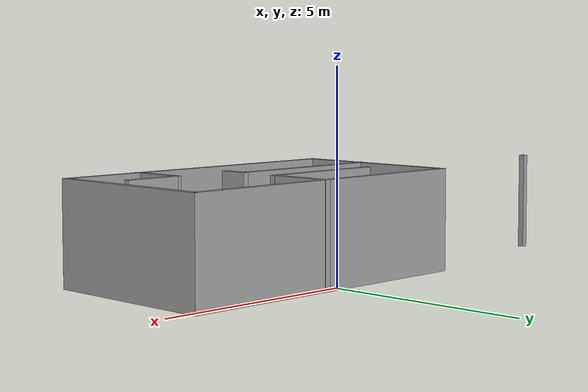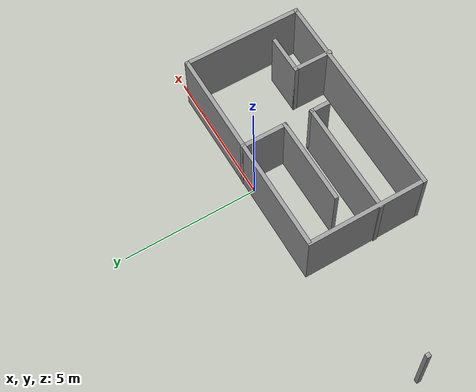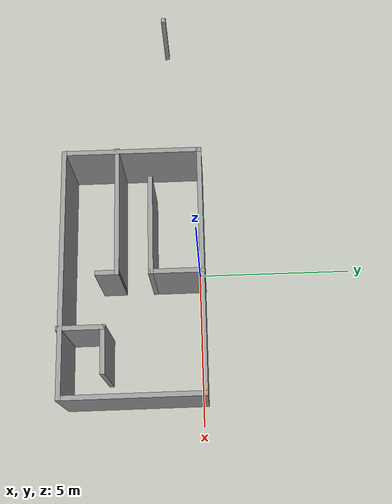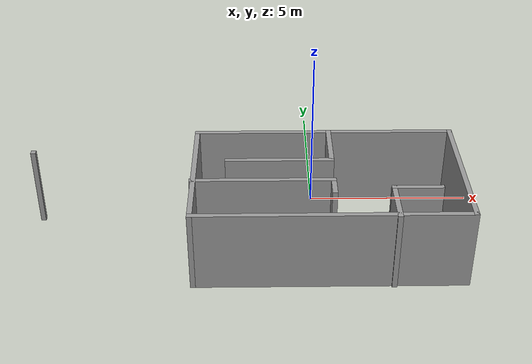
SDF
<?xml version='1.0'?>
<sdf version='1.7'>
  <model name='room'>
    <pose>-2.09106 -2.09742 0 0 -0 0</pose>
    <link name='Wall_1'>
      <collision name='Wall_1_Collision'>
        <geometry>
          <box>
            <size>0.15 0.15 2.5</size>
          </box>
        </geometry>
        <pose>0 0 1.25 0 -0 0</pose>
      </collision>
      <visual name='Wall_1_Visual'>
        <pose>0 0 1.25 0 -0 0</pose>
        <geometry>
          <box>
            <size>0.15 0.15 2.5</size>
          </box>
        </geometry>
        <material>
          <script>
            <uri>file://media/materials/scripts/gazebo.material</uri>
            <name>Gazebo/Grey</name>
          </script>
          <ambient>1 1 1 1</ambient>
        </material>
        <meta>
          <layer>0</layer>
        </meta>
      </visual>
      <pose>-6.36759 1.11006 0 0 -0 0</pose>
    </link>
    <link name='Wall_10'>
      <collision name='Wall_10_Collision'>
        <geometry>
          <box>
            <size>4.5 0.15 2.5</size>
          </box>
        </geometry>
        <pose>0 0 1.25 0 -0 0</pose>
      </collision>
      <visual name='Wall_10_Visual'>
        <pose>0 0 1.25 0 -0 0</pose>
        <geometry>
          <box>
            <size>4.5 0.15 2.5</size>
          </box>
        </geometry>
        <material>
          <script>
            <uri>file://media/materials/scripts/gazebo.material</uri>
            <name>Gazebo/Grey</name>
          </script>
          <ambient>1 1 1 1</ambient>
        </material>
        <meta>
          <layer>0</layer>
        </meta>
      </visual>
      <pose>6.36759 0.020676 0 0 -0 -1.5708</pose>
    </link>
    <link name='Wall_11'>
      <collision name='Wall_11_Collision'>
        <geometry>
          <box>
            <size>8 0.15 2.5</size>
          </box>
        </geometry>
        <pose>0 0 1.25 0 -0 0</pose>
      </collision>
      <visual name='Wall_11_Visual'>
        <pose>0 0 1.25 0 -0 0</pose>
        <geometry>
          <box>
            <size>8 0.15 2.5</size>
          </box>
        </geometry>
        <material>
          <script>
            <uri>file://media/materials/scripts/gazebo.material</uri>
            <name>Gazebo/Grey</name>
          </script>
          <ambient>1 1 1 1</ambient>
        </material>
        <meta>
          <layer>0</layer>
        </meta>
      </visual>
      <pose>2.44258 -2.15432 0 0 -0 3.14159</pose>
    </link>
    <link name='Wall_12'>
      <collision name='Wall_12_Collision'>
        <geometry>
          <box>
            <size>4.5 0.15 2.5</size>
          </box>
        </geometry>
        <pose>0 0 1.25 0 -0 0</pose>
      </collision>
      <visual name='Wall_12_Visual'>
        <pose>0 0 1.25 0 -0 0</pose>
        <geometry>
          <box>
            <size>4.5 0.15 2.5</size>
          </box>
        </geometry>
        <material>
          <script>
            <uri>file://media/materials/scripts/gazebo.material</uri>
            <name>Gazebo/Grey</name>
          </script>
          <ambient>1 1 1 1</ambient>
        </material>
        <meta>
          <layer>0</layer>
        </meta>
      </visual>
      <pose>-1.48242 0.020676 0 0 -0 1.5708</pose>
    </link>
    <link name='Wall_14'>
      <collision name='Wall_14_Collision'>
        <geometry>
          <box>
            <size>1.75 0.15 2.5</size>
          </box>
        </geometry>
        <pose>0 0 1.25 0 -0 0</pose>
      </collision>
      <visual name='Wall_14_Visual'>
        <pose>0 0 1.25 0 -0 0</pose>
        <geometry>
          <box>
            <size>1.75 0.15 2.5</size>
          </box>
        </geometry>
        <material>
          <script>
            <uri>file://media/materials/scripts/gazebo.material</uri>
            <name>Gazebo/Grey</name>
          </script>
          <ambient>1 1 1 1</ambient>
        </material>
        <meta>
          <layer>0</layer>
        </meta>
      </visual>
      <pose>2.58588 1.4073 0 0 -0 -1.5708</pose>
    </link>
    <link name='Wall_15'>
      <collision name='Wall_15_Collision'>
        <geometry>
          <box>
            <size>3.25 0.15 2.5</size>
          </box>
        </geometry>
        <pose>0 0 1.25 0 -0 0</pose>
      </collision>
      <visual name='Wall_15_Visual'>
        <pose>0 0 1.25 0 -0 0</pose>
        <geometry>
          <box>
            <size>3.25 0.15 2.5</size>
          </box>
        </geometry>
        <material>
          <script>
            <uri>file://media/materials/scripts/gazebo.material</uri>
            <name>Gazebo/Grey</name>
          </script>
          <ambient>1 1 1 1</ambient>
        </material>
        <meta>
          <layer>0</layer>
        </meta>
      </visual>
      <pose>1.03588 0.607299 0 0 -0 3.14159</pose>
    </link>
    <link name='Wall_17'>
      <collision name='Wall_17_Collision'>
        <geometry>
          <box>
            <size>4.25 0.15 2.5</size>
          </box>
        </geometry>
        <pose>0 0 1.25 0 -0 0</pose>
      </collision>
      <visual name='Wall_17_Visual'>
        <pose>0 0 1.25 0 -0 0</pose>
        <geometry>
          <box>
            <size>4.25 0.15 2.5</size>
          </box>
        </geometry>
        <material>
          <script>
            <uri>file://media/materials/scripts/gazebo.material</uri>
            <name>Gazebo/Grey</name>
          </script>
          <ambient>1 1 1 1</ambient>
        </material>
        <meta>
          <layer>0</layer>
        </meta>
      </visual>
      <pose>0.530689 -0.445636 0 0 -0 0</pose>
    </link>
    <link name='Wall_18'>
      <collision name='Wall_18_Collision'>
        <geometry>
          <box>
            <size>0.75 0.15 2.5</size>
          </box>
        </geometry>
        <pose>0 0 1.25 0 -0 0</pose>
      </collision>
      <visual name='Wall_18_Visual'>
        <pose>0 0 1.25 0 -0 0</pose>
        <geometry>
          <box>
            <size>0.75 0.15 2.5</size>
          </box>
        </geometry>
        <material>
          <script>
            <uri>file://media/materials/scripts/gazebo.material</uri>
            <name>Gazebo/Grey</name>
          </script>
          <ambient>1 1 1 1</ambient>
        </material>
        <meta>
          <layer>0</layer>
        </meta>
      </visual>
      <pose>2.58069 -0.745636 0 0 -0 -1.5708</pose>
    </link>
    <link name='Wall_20'>
      <collision name='Wall_20_Collision'>
        <geometry>
          <box>
            <size>1.5 0.15 2.5</size>
          </box>
        </geometry>
        <pose>0 0 1.25 0 -0 0</pose>
      </collision>
      <visual name='Wall_20_Visual'>
        <pose>0 0 1.25 0 -0 0</pose>
        <geometry>
          <box>
            <size>1.5 0.15 2.5</size>
          </box>
        </geometry>
        <material>
          <script>
            <uri>file://media/materials/scripts/gazebo.material</uri>
            <name>Gazebo/Grey</name>
          </script>
          <ambient>1 1 1 1</ambient>
        </material>
        <meta>
          <layer>0</layer>
        </meta>
      </visual>
      <pose>4.27827 -1.5323 0 0 -0 -1.5708</pose>
    </link>
    <link name='Wall_22'>
      <collision name='Wall_22_Collision'>
        <geometry>
          <box>
            <size>1.5 0.15 2.5</size>
          </box>
        </geometry>
        <pose>0 0 1.25 0 -0 0</pose>
      </collision>
      <visual name='Wall_22_Visual'>
        <pose>0 0 1.25 0 -0 0</pose>
        <geometry>
          <box>
            <size>1.5 0.15 2.5</size>
          </box>
        </geometry>
        <material>
          <script>
            <uri>file://media/materials/scripts/gazebo.material</uri>
            <name>Gazebo/Grey</name>
          </script>
          <ambient>1 1 1 1</ambient>
        </material>
        <meta>
          <layer>0</layer>
        </meta>
      </visual>
      <pose>4.95327 -0.857299 0 0 -0 0</pose>
    </link>
    <link name='Wall_9'>
      <collision name='Wall_9_Collision'>
        <geometry>
          <box>
            <size>8 0.15 2.5</size>
          </box>
        </geometry>
        <pose>0 0 1.25 0 -0 0</pose>
      </collision>
      <visual name='Wall_9_Visual'>
        <pose>0 0 1.25 0 -0 0</pose>
        <geometry>
          <box>
            <size>8 0.15 2.5</size>
          </box>
        </geometry>
        <material>
          <script>
            <uri>file://media/materials/scripts/gazebo.material</uri>
            <name>Gazebo/Grey</name>
          </script>
          <ambient>1 1 1 1</ambient>
        </material>
        <meta>
          <layer>0</layer>
        </meta>
      </visual>
      <pose>2.44258 2.19568 0 0 -0 0</pose>
    </link>
    <static>1</static>
  </model>
</sdf>
